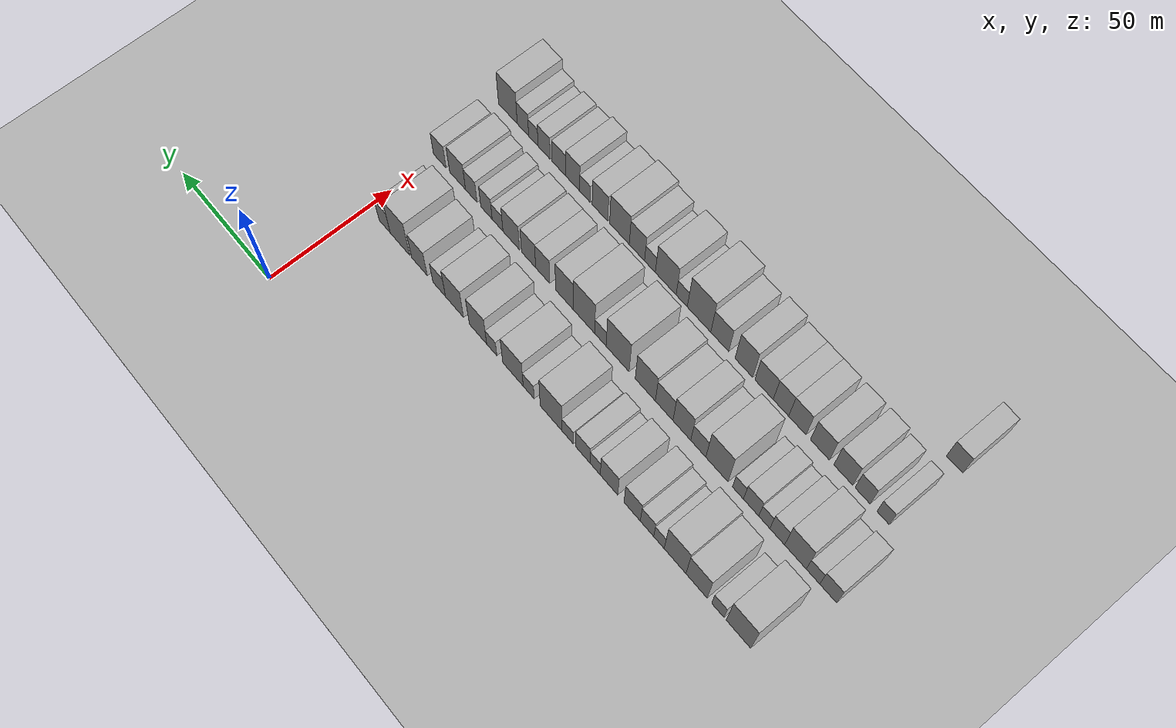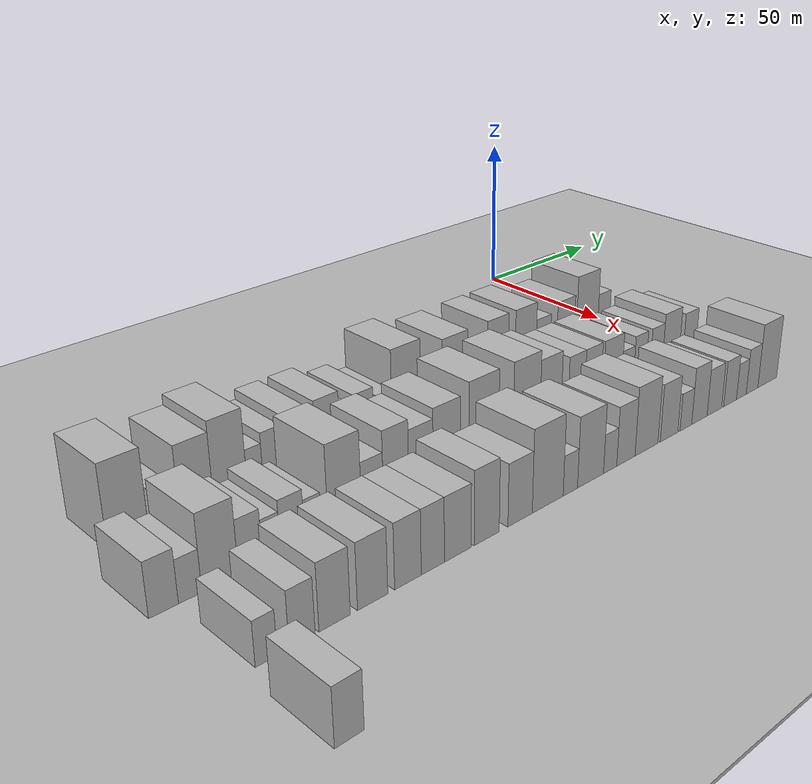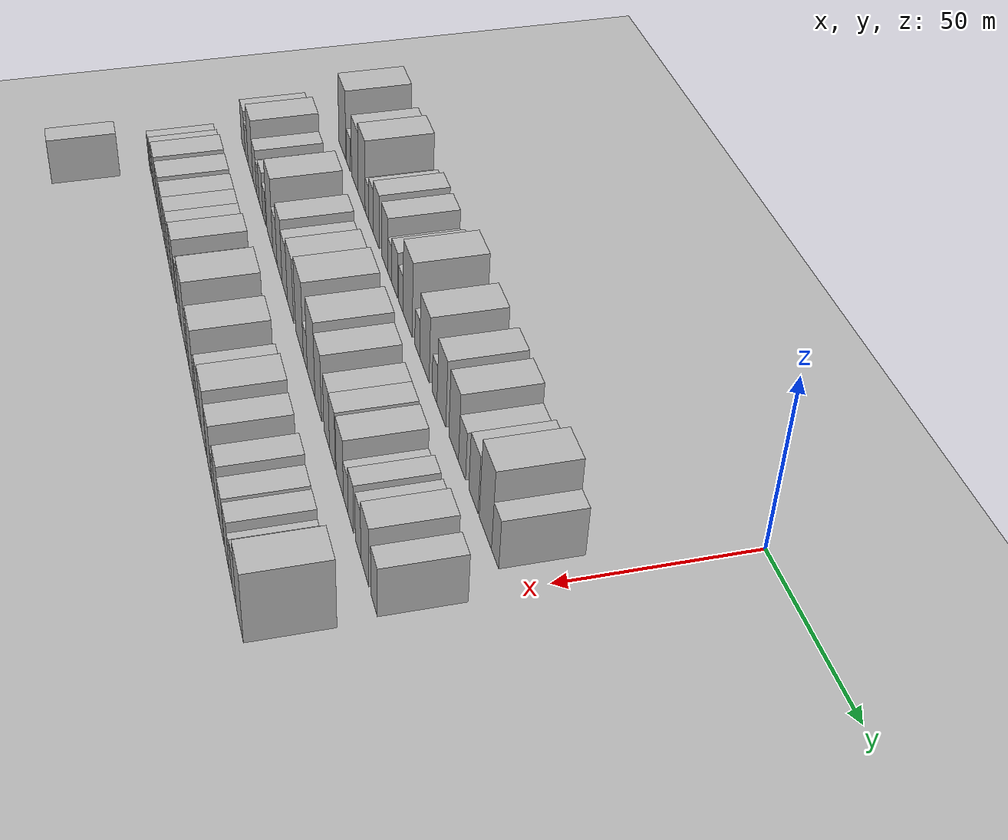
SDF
<sdf version="1.6">
 <world name="default">
  <include><name>ground_plane_1</name><uri>model://HANNAS_ground_plane</uri></include>
  <include>
   <name>ground_plane_2</name>
   <uri>model://HANNAS_ground_plane</uri>
   <pose>100 0 0  0 0 0</pose>
  </include>
  <model name="building_38">
   <static>1</static>
   <pose>50.0000 -184.0242 0 0.000000 0.000000 0.000000</pose>
   <link name="link">
    <pose>0 0 12.00 0 0 0</pose>
    <collision name="collision"><geometry><box><size>20.0000 10.9227 24.0000</size></box></geometry></collision>
    <visual name="visual">
     <cast_shadows>0</cast_shadows>
     <geometry><box><size>20.0000 10.9227 24.0000</size></box></geometry>
     <material>
      <script>
       <uri>model://HANNAS_wall/materials/scripts</uri>
       <uri>model://HANNAS_wall/materials/textures</uri>
       <name>vrc/HANNAS_wall</name>
      </script>
     </material>
    </visual>
   </link>
  </model>
  <model name="building_39">
   <static>1</static>
   <pose>50.0000 -174.7651 0 0.000000 0.000000 0.000000</pose>
   <link name="link">
    <pose>0 0 6.00 0 0 0</pose>
    <collision name="collision"><geometry><box><size>20.0000 5.5954 12.0000</size></box></geometry></collision>
    <visual name="visual">
     <cast_shadows>0</cast_shadows>
     <geometry><box><size>20.0000 5.5954 12.0000</size></box></geometry>
     <material>
      <script>
       <uri>model://HANNAS_wall/materials/scripts</uri>
       <uri>model://HANNAS_wall/materials/textures</uri>
       <name>vrc/HANNAS_wall</name>
      </script>
     </material>
    </visual>
   </link>
  </model>
  <model name="building_40">
   <static>1</static>
   <pose>50.0000 -165.1208 0 0.000000 0.000000 0.000000</pose>
   <link name="link">
    <pose>0 0 10.50 0 0 0</pose>
    <collision name="collision"><geometry><box><size>20.0000 9.6932 21.0000</size></box></geometry></collision>
    <visual name="visual">
     <cast_shadows>0</cast_shadows>
     <geometry><box><size>20.0000 9.6932 21.0000</size></box></geometry>
     <material>
      <script>
       <uri>model://HANNAS_wall/materials/scripts</uri>
       <uri>model://HANNAS_wall/materials/textures</uri>
       <name>vrc/HANNAS_wall</name>
      </script>
     </material>
    </visual>
   </link>
  </model>
  <model name="building_41">
   <static>1</static>
   <pose>50.0000 -155.2484 0 0.000000 0.000000 0.000000</pose>
   <link name="link">
    <pose>0 0 12.00 0 0 0</pose>
    <collision name="collision"><geometry><box><size>20.0000 10.0516 24.0000</size></box></geometry></collision>
    <visual name="visual">
     <cast_shadows>0</cast_shadows>
     <geometry><box><size>20.0000 10.0516 24.0000</size></box></geometry>
     <material>
      <script>
       <uri>model://HANNAS_wall/materials/scripts</uri>
       <uri>model://HANNAS_wall/materials/textures</uri>
       <name>vrc/HANNAS_wall</name>
      </script>
     </material>
    </visual>
   </link>
  </model>
  <model name="building_42">
   <static>1</static>
   <pose>50.0000 -147.7631 0 0.000000 0.000000 0.000000</pose>
   <link name="link">
    <pose>0 0 6.00 0 0 0</pose>
    <collision name="collision"><geometry><box><size>20.0000 4.9192 12.0000</size></box></geometry></collision>
    <visual name="visual">
     <cast_shadows>0</cast_shadows>
     <geometry><box><size>20.0000 4.9192 12.0000</size></box></geometry>
     <material>
      <script>
       <uri>model://HANNAS_wall/materials/scripts</uri>
       <uri>model://HANNAS_wall/materials/textures</uri>
       <name>vrc/HANNAS_wall</name>
      </script>
     </material>
    </visual>
   </link>
  </model>
  <model name="building_43">
   <static>1</static>
   <pose>50.0000 -142.1714 0 0.000000 0.000000 0.000000</pose>
   <link name="link">
    <pose>0 0 7.50 0 0 0</pose>
    <collision name="collision"><geometry><box><size>20.0000 6.2641 15.0000</size></box></geometry></collision>
    <visual name="visual">
     <cast_shadows>0</cast_shadows>
     <geometry><box><size>20.0000 6.2641 15.0000</size></box></geometry>
     <material>
      <script>
       <uri>model://HANNAS_wall/materials/scripts</uri>
       <uri>model://HANNAS_wall/materials/textures</uri>
       <name>vrc/HANNAS_wall</name>
      </script>
     </material>
    </visual>
   </link>
  </model>
  <model name="building_44">
   <static>1</static>
   <pose>50.0000 -135.1773 0 0.000000 0.000000 0.000000</pose>
   <link name="link">
    <pose>0 0 9.00 0 0 0</pose>
    <collision name="collision"><geometry><box><size>20.0000 7.7241 18.0000</size></box></geometry></collision>
    <visual name="visual">
     <cast_shadows>0</cast_shadows>
     <geometry><box><size>20.0000 7.7241 18.0000</size></box></geometry>
     <material>
      <script>
       <uri>model://HANNAS_wall/materials/scripts</uri>
       <uri>model://HANNAS_wall/materials/textures</uri>
       <name>vrc/HANNAS_wall</name>
      </script>
     </material>
    </visual>
   </link>
  </model>
  <model name="building_45">
   <static>1</static>
   <pose>50.0000 -124.1490 0 0.000000 0.000000 0.000000</pose>
   <link name="link">
    <pose>0 0 9.00 0 0 0</pose>
    <collision name="collision"><geometry><box><size>20.0000 8.3326 18.0000</size></box></geometry></collision>
    <visual name="visual">
     <cast_shadows>0</cast_shadows>
     <geometry><box><size>20.0000 8.3326 18.0000</size></box></geometry>
     <material>
      <script>
       <uri>model://HANNAS_wall/materials/scripts</uri>
       <uri>model://HANNAS_wall/materials/textures</uri>
       <name>vrc/HANNAS_wall</name>
      </script>
     </material>
    </visual>
   </link>
  </model>
  <model name="building_46">
   <static>1</static>
   <pose>50.0000 -117.4950 0 0.000000 0.000000 0.000000</pose>
   <link name="link">
    <pose>0 0 6.00 0 0 0</pose>
    <collision name="collision"><geometry><box><size>20.0000 4.9755 12.0000</size></box></geometry></collision>
    <visual name="visual">
     <cast_shadows>0</cast_shadows>
     <geometry><box><size>20.0000 4.9755 12.0000</size></box></geometry>
     <material>
      <script>
       <uri>model://HANNAS_wall/materials/scripts</uri>
       <uri>model://HANNAS_wall/materials/textures</uri>
       <name>vrc/HANNAS_wall</name>
      </script>
     </material>
    </visual>
   </link>
  </model>
  <model name="building_47">
   <static>1</static>
   <pose>50.0000 -111.4804 0 0.000000 0.000000 0.000000</pose>
   <link name="link">
    <pose>0 0 7.50 0 0 0</pose>
    <collision name="collision"><geometry><box><size>20.0000 7.0537 15.0000</size></box></geometry></collision>
    <visual name="visual">
     <cast_shadows>0</cast_shadows>
     <geometry><box><size>20.0000 7.0537 15.0000</size></box></geometry>
     <material>
      <script>
       <uri>model://HANNAS_wall/materials/scripts</uri>
       <uri>model://HANNAS_wall/materials/textures</uri>
       <name>vrc/HANNAS_wall</name>
      </script>
     </material>
    </visual>
   </link>
  </model>
  <model name="building_48">
   <static>1</static>
   <pose>50.0000 -104.1491 0 0.000000 0.000000 0.000000</pose>
   <link name="link">
    <pose>0 0 6.00 0 0 0</pose>
    <collision name="collision"><geometry><box><size>20.0000 5.6088 12.0000</size></box></geometry></collision>
    <visual name="visual">
     <cast_shadows>0</cast_shadows>
     <geometry><box><size>20.0000 5.6088 12.0000</size></box></geometry>
     <material>
      <script>
       <uri>model://HANNAS_wall/materials/scripts</uri>
       <uri>model://HANNAS_wall/materials/textures</uri>
       <name>vrc/HANNAS_wall</name>
      </script>
     </material>
    </visual>
   </link>
  </model>
  <model name="building_49">
   <static>1</static>
   <pose>50.0000 -95.9349 0 0.000000 0.000000 0.000000</pose>
   <link name="link">
    <pose>0 0 12.00 0 0 0</pose>
    <collision name="collision"><geometry><box><size>20.0000 10.8196 24.0000</size></box></geometry></collision>
    <visual name="visual">
     <cast_shadows>0</cast_shadows>
     <geometry><box><size>20.0000 10.8196 24.0000</size></box></geometry>
     <material>
      <script>
       <uri>model://HANNAS_wall/materials/scripts</uri>
       <uri>model://HANNAS_wall/materials/textures</uri>
       <name>vrc/HANNAS_wall</name>
      </script>
     </material>
    </visual>
   </link>
  </model>
  <model name="building_50">
   <static>1</static>
   <pose>50.0000 -84.7681 0 0.000000 0.000000 0.000000</pose>
   <link name="link">
    <pose>0 0 6.00 0 0 0</pose>
    <collision name="collision"><geometry><box><size>20.0000 5.5140 12.0000</size></box></geometry></collision>
    <visual name="visual">
     <cast_shadows>0</cast_shadows>
     <geometry><box><size>20.0000 5.5140 12.0000</size></box></geometry>
     <material>
      <script>
       <uri>model://HANNAS_wall/materials/scripts</uri>
       <uri>model://HANNAS_wall/materials/textures</uri>
       <name>vrc/HANNAS_wall</name>
      </script>
     </material>
    </visual>
   </link>
  </model>
  <model name="building_51">
   <static>1</static>
   <pose>50.0000 -76.8335 0 0.000000 0.000000 0.000000</pose>
   <link name="link">
    <pose>0 0 10.50 0 0 0</pose>
    <collision name="collision"><geometry><box><size>20.0000 10.3552 21.0000</size></box></geometry></collision>
    <visual name="visual">
     <cast_shadows>0</cast_shadows>
     <geometry><box><size>20.0000 10.3552 21.0000</size></box></geometry>
     <material>
      <script>
       <uri>model://HANNAS_wall/materials/scripts</uri>
       <uri>model://HANNAS_wall/materials/textures</uri>
       <name>vrc/HANNAS_wall</name>
      </script>
     </material>
    </visual>
   </link>
  </model>
  <model name="building_52">
   <static>1</static>
   <pose>50.0000 -66.0445 0 0.000000 0.000000 0.000000</pose>
   <link name="link">
    <pose>0 0 6.00 0 0 0</pose>
    <collision name="collision"><geometry><box><size>20.0000 5.2229 12.0000</size></box></geometry></collision>
    <visual name="visual">
     <cast_shadows>0</cast_shadows>
     <geometry><box><size>20.0000 5.2229 12.0000</size></box></geometry>
     <material>
      <script>
       <uri>model://HANNAS_wall/materials/scripts</uri>
       <uri>model://HANNAS_wall/materials/textures</uri>
       <name>vrc/HANNAS_wall</name>
      </script>
     </material>
    </visual>
   </link>
  </model>
  <model name="building_53">
   <static>1</static>
   <pose>50.0000 -58.9326 0 0.000000 0.000000 0.000000</pose>
   <link name="link">
    <pose>0 0 10.50 0 0 0</pose>
    <collision name="collision"><geometry><box><size>20.0000 9.0008 21.0000</size></box></geometry></collision>
    <visual name="visual">
     <cast_shadows>0</cast_shadows>
     <geometry><box><size>20.0000 9.0008 21.0000</size></box></geometry>
     <material>
      <script>
       <uri>model://HANNAS_wall/materials/scripts</uri>
       <uri>model://HANNAS_wall/materials/textures</uri>
       <name>vrc/HANNAS_wall</name>
      </script>
     </material>
    </visual>
   </link>
  </model>
  <model name="building_54">
   <static>1</static>
   <pose>50.0000 -46.7122 0 0.000000 0.000000 0.000000</pose>
   <link name="link">
    <pose>0 0 10.50 0 0 0</pose>
    <collision name="collision"><geometry><box><size>20.0000 9.4400 21.0000</size></box></geometry></collision>
    <visual name="visual">
     <cast_shadows>0</cast_shadows>
     <geometry><box><size>20.0000 9.4400 21.0000</size></box></geometry>
     <material>
      <script>
       <uri>model://HANNAS_wall/materials/scripts</uri>
       <uri>model://HANNAS_wall/materials/textures</uri>
       <name>vrc/HANNAS_wall</name>
      </script>
     </material>
    </visual>
   </link>
  </model>
  <model name="building_55">
   <static>1</static>
   <pose>50.0000 -38.6631 0 0.000000 0.000000 0.000000</pose>
   <link name="link">
    <pose>0 0 7.50 0 0 0</pose>
    <collision name="collision"><geometry><box><size>20.0000 6.6581 15.0000</size></box></geometry></collision>
    <visual name="visual">
     <cast_shadows>0</cast_shadows>
     <geometry><box><size>20.0000 6.6581 15.0000</size></box></geometry>
     <material>
      <script>
       <uri>model://HANNAS_wall/materials/scripts</uri>
       <uri>model://HANNAS_wall/materials/textures</uri>
       <name>vrc/HANNAS_wall</name>
      </script>
     </material>
    </visual>
   </link>
  </model>
  <model name="building_56">
   <static>1</static>
   <pose>50.0000 -28.1345 0 0.000000 0.000000 0.000000</pose>
   <link name="link">
    <pose>0 0 9.00 0 0 0</pose>
    <collision name="collision"><geometry><box><size>20.0000 8.3990 18.0000</size></box></geometry></collision>
    <visual name="visual">
     <cast_shadows>0</cast_shadows>
     <geometry><box><size>20.0000 8.3990 18.0000</size></box></geometry>
     <material>
      <script>
       <uri>model://HANNAS_wall/materials/scripts</uri>
       <uri>model://HANNAS_wall/materials/textures</uri>
       <name>vrc/HANNAS_wall</name>
      </script>
     </material>
    </visual>
   </link>
  </model>
  <model name="building_57">
   <static>1</static>
   <pose>50.0000 -17.6070 0 0.000000 0.000000 0.000000</pose>
   <link name="link">
    <pose>0 0 12.00 0 0 0</pose>
    <collision name="collision"><geometry><box><size>20.0000 10.6561 24.0000</size></box></geometry></collision>
    <visual name="visual">
     <cast_shadows>0</cast_shadows>
     <geometry><box><size>20.0000 10.6561 24.0000</size></box></geometry>
     <material>
      <script>
       <uri>model://HANNAS_wall/materials/scripts</uri>
       <uri>model://HANNAS_wall/materials/textures</uri>
       <name>vrc/HANNAS_wall</name>
      </script>
     </material>
    </visual>
   </link>
  </model>
  <model name="building_58">
   <static>1</static>
   <pose>50.0000 -9.2561 0 0.000000 0.000000 0.000000</pose>
   <link name="link">
    <pose>0 0 7.50 0 0 0</pose>
    <collision name="collision"><geometry><box><size>20.0000 6.0458 15.0000</size></box></geometry></collision>
    <visual name="visual">
     <cast_shadows>0</cast_shadows>
     <geometry><box><size>20.0000 6.0458 15.0000</size></box></geometry>
     <material>
      <script>
       <uri>model://HANNAS_wall/materials/scripts</uri>
       <uri>model://HANNAS_wall/materials/textures</uri>
       <name>vrc/HANNAS_wall</name>
      </script>
     </material>
    </visual>
   </link>
  </model>
  <model name="building_153">
   <static>1</static>
   <pose>79.0000 -192.1638 0 0.000000 0.000000 0.000000</pose>
   <link name="link">
    <pose>0 0 7.50 0 0 0</pose>
    <collision name="collision"><geometry><box><size>20.0000 7.4065 15.0000</size></box></geometry></collision>
    <visual name="visual">
     <cast_shadows>0</cast_shadows>
     <geometry><box><size>20.0000 7.4065 15.0000</size></box></geometry>
     <material>
      <script>
       <uri>model://HANNAS_wall/materials/scripts</uri>
       <uri>model://HANNAS_wall/materials/textures</uri>
       <name>vrc/HANNAS_wall</name>
      </script>
     </material>
    </visual>
   </link>
  </model>
  <model name="building_154">
   <static>1</static>
   <pose>79.0000 -185.4684 0 0.000000 0.000000 0.000000</pose>
   <link name="link">
    <pose>0 0 6.00 0 0 0</pose>
    <collision name="collision"><geometry><box><size>20.0000 5.9842 12.0000</size></box></geometry></collision>
    <visual name="visual">
     <cast_shadows>0</cast_shadows>
     <geometry><box><size>20.0000 5.9842 12.0000</size></box></geometry>
     <material>
      <script>
       <uri>model://HANNAS_wall/materials/scripts</uri>
       <uri>model://HANNAS_wall/materials/textures</uri>
       <name>vrc/HANNAS_wall</name>
      </script>
     </material>
    </visual>
   </link>
  </model>
  <model name="building_155">
   <static>1</static>
   <pose>79.0000 -177.6312 0 0.000000 0.000000 0.000000</pose>
   <link name="link">
    <pose>0 0 10.50 0 0 0</pose>
    <collision name="collision"><geometry><box><size>20.0000 9.6901 21.0000</size></box></geometry></collision>
    <visual name="visual">
     <cast_shadows>0</cast_shadows>
     <geometry><box><size>20.0000 9.6901 21.0000</size></box></geometry>
     <material>
      <script>
       <uri>model://HANNAS_wall/materials/scripts</uri>
       <uri>model://HANNAS_wall/materials/textures</uri>
       <name>vrc/HANNAS_wall</name>
      </script>
     </material>
    </visual>
   </link>
  </model>
  <model name="building_156">
   <static>1</static>
   <pose>79.0000 -169.4577 0 0.000000 0.000000 0.000000</pose>
   <link name="link">
    <pose>0 0 7.50 0 0 0</pose>
    <collision name="collision"><geometry><box><size>20.0000 6.6568 15.0000</size></box></geometry></collision>
    <visual name="visual">
     <cast_shadows>0</cast_shadows>
     <geometry><box><size>20.0000 6.6568 15.0000</size></box></geometry>
     <material>
      <script>
       <uri>model://HANNAS_wall/materials/scripts</uri>
       <uri>model://HANNAS_wall/materials/textures</uri>
       <name>vrc/HANNAS_wall</name>
      </script>
     </material>
    </visual>
   </link>
  </model>
  <model name="building_157">
   <static>1</static>
   <pose>79.0000 -163.5980 0 0.000000 0.000000 0.000000</pose>
   <link name="link">
    <pose>0 0 6.00 0 0 0</pose>
    <collision name="collision"><geometry><box><size>20.0000 5.0628 12.0000</size></box></geometry></collision>
    <visual name="visual">
     <cast_shadows>0</cast_shadows>
     <geometry><box><size>20.0000 5.0628 12.0000</size></box></geometry>
     <material>
      <script>
       <uri>model://HANNAS_wall/materials/scripts</uri>
       <uri>model://HANNAS_wall/materials/textures</uri>
       <name>vrc/HANNAS_wall</name>
      </script>
     </material>
    </visual>
   </link>
  </model>
  <model name="building_158">
   <static>1</static>
   <pose>79.0000 -157.5581 0 0.000000 0.000000 0.000000</pose>
   <link name="link">
    <pose>0 0 7.50 0 0 0</pose>
    <collision name="collision"><geometry><box><size>20.0000 7.0170 15.0000</size></box></geometry></collision>
    <visual name="visual">
     <cast_shadows>0</cast_shadows>
     <geometry><box><size>20.0000 7.0170 15.0000</size></box></geometry>
     <material>
      <script>
       <uri>model://HANNAS_wall/materials/scripts</uri>
       <uri>model://HANNAS_wall/materials/textures</uri>
       <name>vrc/HANNAS_wall</name>
      </script>
     </material>
    </visual>
   </link>
  </model>
  <model name="building_159">
   <static>1</static>
   <pose>79.0000 -151.5121 0 0.000000 0.000000 0.000000</pose>
   <link name="link">
    <pose>0 0 6.00 0 0 0</pose>
    <collision name="collision"><geometry><box><size>20.0000 5.0750 12.0000</size></box></geometry></collision>
    <visual name="visual">
     <cast_shadows>0</cast_shadows>
     <geometry><box><size>20.0000 5.0750 12.0000</size></box></geometry>
     <material>
      <script>
       <uri>model://HANNAS_wall/materials/scripts</uri>
       <uri>model://HANNAS_wall/materials/textures</uri>
       <name>vrc/HANNAS_wall</name>
      </script>
     </material>
    </visual>
   </link>
  </model>
  <model name="building_160">
   <static>1</static>
   <pose>79.0000 -141.7733 0 0.000000 0.000000 0.000000</pose>
   <link name="link">
    <pose>0 0 12.00 0 0 0</pose>
    <collision name="collision"><geometry><box><size>20.0000 10.4025 24.0000</size></box></geometry></collision>
    <visual name="visual">
     <cast_shadows>0</cast_shadows>
     <geometry><box><size>20.0000 10.4025 24.0000</size></box></geometry>
     <material>
      <script>
       <uri>model://HANNAS_wall/materials/scripts</uri>
       <uri>model://HANNAS_wall/materials/textures</uri>
       <name>vrc/HANNAS_wall</name>
      </script>
     </material>
    </visual>
   </link>
  </model>
  <model name="building_161">
   <static>1</static>
   <pose>79.0000 -133.0103 0 0.000000 0.000000 0.000000</pose>
   <link name="link">
    <pose>0 0 7.50 0 0 0</pose>
    <collision name="collision"><geometry><box><size>20.0000 7.1236 15.0000</size></box></geometry></collision>
    <visual name="visual">
     <cast_shadows>0</cast_shadows>
     <geometry><box><size>20.0000 7.1236 15.0000</size></box></geometry>
     <material>
      <script>
       <uri>model://HANNAS_wall/materials/scripts</uri>
       <uri>model://HANNAS_wall/materials/textures</uri>
       <name>vrc/HANNAS_wall</name>
      </script>
     </material>
    </visual>
   </link>
  </model>
  <model name="building_162">
   <static>1</static>
   <pose>79.0000 -125.2023 0 0.000000 0.000000 0.000000</pose>
   <link name="link">
    <pose>0 0 10.50 0 0 0</pose>
    <collision name="collision"><geometry><box><size>20.0000 8.4924 21.0000</size></box></geometry></collision>
    <visual name="visual">
     <cast_shadows>0</cast_shadows>
     <geometry><box><size>20.0000 8.4924 21.0000</size></box></geometry>
     <material>
      <script>
       <uri>model://HANNAS_wall/materials/scripts</uri>
       <uri>model://HANNAS_wall/materials/textures</uri>
       <name>vrc/HANNAS_wall</name>
      </script>
     </material>
    </visual>
   </link>
  </model>
  <model name="building_163">
   <static>1</static>
   <pose>79.0000 -116.7203 0 0.000000 0.000000 0.000000</pose>
   <link name="link">
    <pose>0 0 9.00 0 0 0</pose>
    <collision name="collision"><geometry><box><size>20.0000 8.4717 18.0000</size></box></geometry></collision>
    <visual name="visual">
     <cast_shadows>0</cast_shadows>
     <geometry><box><size>20.0000 8.4717 18.0000</size></box></geometry>
     <material>
      <script>
       <uri>model://HANNAS_wall/materials/scripts</uri>
       <uri>model://HANNAS_wall/materials/textures</uri>
       <name>vrc/HANNAS_wall</name>
      </script>
     </material>
    </visual>
   </link>
  </model>
  <model name="building_164">
   <static>1</static>
   <pose>79.0000 -107.5965 0 0.000000 0.000000 0.000000</pose>
   <link name="link">
    <pose>0 0 10.50 0 0 0</pose>
    <collision name="collision"><geometry><box><size>20.0000 9.7758 21.0000</size></box></geometry></collision>
    <visual name="visual">
     <cast_shadows>0</cast_shadows>
     <geometry><box><size>20.0000 9.7758 21.0000</size></box></geometry>
     <material>
      <script>
       <uri>model://HANNAS_wall/materials/scripts</uri>
       <uri>model://HANNAS_wall/materials/textures</uri>
       <name>vrc/HANNAS_wall</name>
      </script>
     </material>
    </visual>
   </link>
  </model>
  <model name="building_165">
   <static>1</static>
   <pose>79.0000 -94.0342 0 0.000000 0.000000 0.000000</pose>
   <link name="link">
    <pose>0 0 12.00 0 0 0</pose>
    <collision name="collision"><geometry><box><size>20.0000 11.3489 24.0000</size></box></geometry></collision>
    <visual name="visual">
     <cast_shadows>0</cast_shadows>
     <geometry><box><size>20.0000 11.3489 24.0000</size></box></geometry>
     <material>
      <script>
       <uri>model://HANNAS_wall/materials/scripts</uri>
       <uri>model://HANNAS_wall/materials/textures</uri>
       <name>vrc/HANNAS_wall</name>
      </script>
     </material>
    </visual>
   </link>
  </model>
  <model name="building_166">
   <static>1</static>
   <pose>79.0000 -85.4858 0 0.000000 0.000000 0.000000</pose>
   <link name="link">
    <pose>0 0 6.00 0 0 0</pose>
    <collision name="collision"><geometry><box><size>20.0000 5.7478 12.0000</size></box></geometry></collision>
    <visual name="visual">
     <cast_shadows>0</cast_shadows>
     <geometry><box><size>20.0000 5.7478 12.0000</size></box></geometry>
     <material>
      <script>
       <uri>model://HANNAS_wall/materials/scripts</uri>
       <uri>model://HANNAS_wall/materials/textures</uri>
       <name>vrc/HANNAS_wall</name>
      </script>
     </material>
    </visual>
   </link>
  </model>
  <model name="building_167">
   <static>1</static>
   <pose>79.0000 -77.2074 0 0.000000 0.000000 0.000000</pose>
   <link name="link">
    <pose>0 0 12.00 0 0 0</pose>
    <collision name="collision"><geometry><box><size>20.0000 10.8091 24.0000</size></box></geometry></collision>
    <visual name="visual">
     <cast_shadows>0</cast_shadows>
     <geometry><box><size>20.0000 10.8091 24.0000</size></box></geometry>
     <material>
      <script>
       <uri>model://HANNAS_wall/materials/scripts</uri>
       <uri>model://HANNAS_wall/materials/textures</uri>
       <name>vrc/HANNAS_wall</name>
      </script>
     </material>
    </visual>
   </link>
  </model>
  <model name="building_168">
   <static>1</static>
   <pose>79.0000 -67.3506 0 0.000000 0.000000 0.000000</pose>
   <link name="link">
    <pose>0 0 10.50 0 0 0</pose>
    <collision name="collision"><geometry><box><size>20.0000 8.9043 21.0000</size></box></geometry></collision>
    <visual name="visual">
     <cast_shadows>0</cast_shadows>
     <geometry><box><size>20.0000 8.9043 21.0000</size></box></geometry>
     <material>
      <script>
       <uri>model://HANNAS_wall/materials/scripts</uri>
       <uri>model://HANNAS_wall/materials/textures</uri>
       <name>vrc/HANNAS_wall</name>
      </script>
     </material>
    </visual>
   </link>
  </model>
  <model name="building_169">
   <static>1</static>
   <pose>79.0000 -56.2754 0 0.000000 0.000000 0.000000</pose>
   <link name="link">
    <pose>0 0 9.00 0 0 0</pose>
    <collision name="collision"><geometry><box><size>20.0000 7.2462 18.0000</size></box></geometry></collision>
    <visual name="visual">
     <cast_shadows>0</cast_shadows>
     <geometry><box><size>20.0000 7.2462 18.0000</size></box></geometry>
     <material>
      <script>
       <uri>model://HANNAS_wall/materials/scripts</uri>
       <uri>model://HANNAS_wall/materials/textures</uri>
       <name>vrc/HANNAS_wall</name>
      </script>
     </material>
    </visual>
   </link>
  </model>
  <model name="building_170">
   <static>1</static>
   <pose>79.0000 -48.9770 0 0.000000 0.000000 0.000000</pose>
   <link name="link">
    <pose>0 0 9.00 0 0 0</pose>
    <collision name="collision"><geometry><box><size>20.0000 7.3505 18.0000</size></box></geometry></collision>
    <visual name="visual">
     <cast_shadows>0</cast_shadows>
     <geometry><box><size>20.0000 7.3505 18.0000</size></box></geometry>
     <material>
      <script>
       <uri>model://HANNAS_wall/materials/scripts</uri>
       <uri>model://HANNAS_wall/materials/textures</uri>
       <name>vrc/HANNAS_wall</name>
      </script>
     </material>
    </visual>
   </link>
  </model>
  <model name="building_171">
   <static>1</static>
   <pose>79.0000 -39.9403 0 0.000000 0.000000 0.000000</pose>
   <link name="link">
    <pose>0 0 9.00 0 0 0</pose>
    <collision name="collision"><geometry><box><size>20.0000 8.7228 18.0000</size></box></geometry></collision>
    <visual name="visual">
     <cast_shadows>0</cast_shadows>
     <geometry><box><size>20.0000 8.7228 18.0000</size></box></geometry>
     <material>
      <script>
       <uri>model://HANNAS_wall/materials/scripts</uri>
       <uri>model://HANNAS_wall/materials/textures</uri>
       <name>vrc/HANNAS_wall</name>
      </script>
     </material>
    </visual>
   </link>
  </model>
  <model name="building_172">
   <static>1</static>
   <pose>79.0000 -32.7329 0 0.000000 0.000000 0.000000</pose>
   <link name="link">
    <pose>0 0 6.00 0 0 0</pose>
    <collision name="collision"><geometry><box><size>20.0000 5.6920 12.0000</size></box></geometry></collision>
    <visual name="visual">
     <cast_shadows>0</cast_shadows>
     <geometry><box><size>20.0000 5.6920 12.0000</size></box></geometry>
     <material>
      <script>
       <uri>model://HANNAS_wall/materials/scripts</uri>
       <uri>model://HANNAS_wall/materials/textures</uri>
       <name>vrc/HANNAS_wall</name>
      </script>
     </material>
    </visual>
   </link>
  </model>
  <model name="building_173">
   <static>1</static>
   <pose>79.0000 -26.8521 0 0.000000 0.000000 0.000000</pose>
   <link name="link">
    <pose>0 0 7.50 0 0 0</pose>
    <collision name="collision"><geometry><box><size>20.0000 6.0697 15.0000</size></box></geometry></collision>
    <visual name="visual">
     <cast_shadows>0</cast_shadows>
     <geometry><box><size>20.0000 6.0697 15.0000</size></box></geometry>
     <material>
      <script>
       <uri>model://HANNAS_wall/materials/scripts</uri>
       <uri>model://HANNAS_wall/materials/textures</uri>
       <name>vrc/HANNAS_wall</name>
      </script>
     </material>
    </visual>
   </link>
  </model>
  <model name="building_174">
   <static>1</static>
   <pose>79.0000 -18.7270 0 0.000000 0.000000 0.000000</pose>
   <link name="link">
    <pose>0 0 7.50 0 0 0</pose>
    <collision name="collision"><geometry><box><size>20.0000 6.1805 15.0000</size></box></geometry></collision>
    <visual name="visual">
     <cast_shadows>0</cast_shadows>
     <geometry><box><size>20.0000 6.1805 15.0000</size></box></geometry>
     <material>
      <script>
       <uri>model://HANNAS_wall/materials/scripts</uri>
       <uri>model://HANNAS_wall/materials/textures</uri>
       <name>vrc/HANNAS_wall</name>
      </script>
     </material>
    </visual>
   </link>
  </model>
  <model name="building_175">
   <static>1</static>
   <pose>79.0000 -11.3452 0 0.000000 0.000000 0.000000</pose>
   <link name="link">
    <pose>0 0 9.00 0 0 0</pose>
    <collision name="collision"><geometry><box><size>20.0000 8.5832 18.0000</size></box></geometry></collision>
    <visual name="visual">
     <cast_shadows>0</cast_shadows>
     <geometry><box><size>20.0000 8.5832 18.0000</size></box></geometry>
     <material>
      <script>
       <uri>model://HANNAS_wall/materials/scripts</uri>
       <uri>model://HANNAS_wall/materials/textures</uri>
       <name>vrc/HANNAS_wall</name>
      </script>
     </material>
    </visual>
   </link>
  </model>
  <model name="building_176">
   <static>1</static>
   <pose>79.0000 -1.6232 0 0.000000 0.000000 0.000000</pose>
   <link name="link">
    <pose>0 0 7.50 0 0 0</pose>
    <collision name="collision"><geometry><box><size>20.0000 6.8607 15.0000</size></box></geometry></collision>
    <visual name="visual">
     <cast_shadows>0</cast_shadows>
     <geometry><box><size>20.0000 6.8607 15.0000</size></box></geometry>
     <material>
      <script>
       <uri>model://HANNAS_wall/materials/scripts</uri>
       <uri>model://HANNAS_wall/materials/textures</uri>
       <name>vrc/HANNAS_wall</name>
      </script>
     </material>
    </visual>
   </link>
  </model>
  <model name="building_267">
   <static>1</static>
   <pose>108.0000 -185.8639 0 0.000000 0.000000 0.000000</pose>
   <link name="link">
    <pose>0 0 6.00 0 0 0</pose>
    <collision name="collision"><geometry><box><size>20.0000 5.4788 12.0000</size></box></geometry></collision>
    <visual name="visual">
     <cast_shadows>0</cast_shadows>
     <geometry><box><size>20.0000 5.4788 12.0000</size></box></geometry>
     <material>
      <script>
       <uri>model://HANNAS_wall/materials/scripts</uri>
       <uri>model://HANNAS_wall/materials/textures</uri>
       <name>vrc/HANNAS_wall</name>
      </script>
     </material>
    </visual>
   </link>
  </model>
  <model name="building_268">
   <static>1</static>
   <pose>108.0000 -176.7318 0 0.000000 0.000000 0.000000</pose>
   <link name="link">
    <pose>0 0 7.50 0 0 0</pose>
    <collision name="collision"><geometry><box><size>20.0000 6.7854 15.0000</size></box></geometry></collision>
    <visual name="visual">
     <cast_shadows>0</cast_shadows>
     <geometry><box><size>20.0000 6.7854 15.0000</size></box></geometry>
     <material>
      <script>
       <uri>model://HANNAS_wall/materials/scripts</uri>
       <uri>model://HANNAS_wall/materials/textures</uri>
       <name>vrc/HANNAS_wall</name>
      </script>
     </material>
    </visual>
   </link>
  </model>
  <model name="building_269">
   <static>1</static>
   <pose>108.0000 -168.0785 0 0.000000 0.000000 0.000000</pose>
   <link name="link">
    <pose>0 0 9.00 0 0 0</pose>
    <collision name="collision"><geometry><box><size>20.0000 8.5213 18.0000</size></box></geometry></collision>
    <visual name="visual">
     <cast_shadows>0</cast_shadows>
     <geometry><box><size>20.0000 8.5213 18.0000</size></box></geometry>
     <material>
      <script>
       <uri>model://HANNAS_wall/materials/scripts</uri>
       <uri>model://HANNAS_wall/materials/textures</uri>
       <name>vrc/HANNAS_wall</name>
      </script>
     </material>
    </visual>
   </link>
  </model>
  <model name="building_270">
   <static>1</static>
   <pose>108.0000 -157.4808 0 0.000000 0.000000 0.000000</pose>
   <link name="link">
    <pose>0 0 9.00 0 0 0</pose>
    <collision name="collision"><geometry><box><size>20.0000 8.6741 18.0000</size></box></geometry></collision>
    <visual name="visual">
     <cast_shadows>0</cast_shadows>
     <geometry><box><size>20.0000 8.6741 18.0000</size></box></geometry>
     <material>
      <script>
       <uri>model://HANNAS_wall/materials/scripts</uri>
       <uri>model://HANNAS_wall/materials/textures</uri>
       <name>vrc/HANNAS_wall</name>
      </script>
     </material>
    </visual>
   </link>
  </model>
  <model name="building_271">
   <static>1</static>
   <pose>108.0000 -147.1413 0 0.000000 0.000000 0.000000</pose>
   <link name="link">
    <pose>0 0 9.00 0 0 0</pose>
    <collision name="collision"><geometry><box><size>20.0000 8.0049 18.0000</size></box></geometry></collision>
    <visual name="visual">
     <cast_shadows>0</cast_shadows>
     <geometry><box><size>20.0000 8.0049 18.0000</size></box></geometry>
     <material>
      <script>
       <uri>model://HANNAS_wall/materials/scripts</uri>
       <uri>model://HANNAS_wall/materials/textures</uri>
       <name>vrc/HANNAS_wall</name>
      </script>
     </material>
    </visual>
   </link>
  </model>
  <model name="building_272">
   <static>1</static>
   <pose>108.0000 -139.5292 0 0.000000 0.000000 0.000000</pose>
   <link name="link">
    <pose>0 0 9.00 0 0 0</pose>
    <collision name="collision"><geometry><box><size>20.0000 7.2195 18.0000</size></box></geometry></collision>
    <visual name="visual">
     <cast_shadows>0</cast_shadows>
     <geometry><box><size>20.0000 7.2195 18.0000</size></box></geometry>
     <material>
      <script>
       <uri>model://HANNAS_wall/materials/scripts</uri>
       <uri>model://HANNAS_wall/materials/textures</uri>
       <name>vrc/HANNAS_wall</name>
      </script>
     </material>
    </visual>
   </link>
  </model>
  <model name="building_273">
   <static>1</static>
   <pose>108.0000 -131.5983 0 0.000000 0.000000 0.000000</pose>
   <link name="link">
    <pose>0 0 9.00 0 0 0</pose>
    <collision name="collision"><geometry><box><size>20.0000 8.6423 18.0000</size></box></geometry></collision>
    <visual name="visual">
     <cast_shadows>0</cast_shadows>
     <geometry><box><size>20.0000 8.6423 18.0000</size></box></geometry>
     <material>
      <script>
       <uri>model://HANNAS_wall/materials/scripts</uri>
       <uri>model://HANNAS_wall/materials/textures</uri>
       <name>vrc/HANNAS_wall</name>
      </script>
     </material>
    </visual>
   </link>
  </model>
  <model name="building_274">
   <static>1</static>
   <pose>108.0000 -122.0644 0 0.000000 0.000000 0.000000</pose>
   <link name="link">
    <pose>0 0 10.50 0 0 0</pose>
    <collision name="collision"><geometry><box><size>20.0000 8.4255 21.0000</size></box></geometry></collision>
    <visual name="visual">
     <cast_shadows>0</cast_shadows>
     <geometry><box><size>20.0000 8.4255 21.0000</size></box></geometry>
     <material>
      <script>
       <uri>model://HANNAS_wall/materials/scripts</uri>
       <uri>model://HANNAS_wall/materials/textures</uri>
       <name>vrc/HANNAS_wall</name>
      </script>
     </material>
    </visual>
   </link>
  </model>
  <model name="building_275">
   <static>1</static>
   <pose>108.0000 -110.5147 0 0.000000 0.000000 0.000000</pose>
   <link name="link">
    <pose>0 0 9.00 0 0 0</pose>
    <collision name="collision"><geometry><box><size>20.0000 8.6739 18.0000</size></box></geometry></collision>
    <visual name="visual">
     <cast_shadows>0</cast_shadows>
     <geometry><box><size>20.0000 8.6739 18.0000</size></box></geometry>
     <material>
      <script>
       <uri>model://HANNAS_wall/materials/scripts</uri>
       <uri>model://HANNAS_wall/materials/textures</uri>
       <name>vrc/HANNAS_wall</name>
      </script>
     </material>
    </visual>
   </link>
  </model>
  <model name="building_276">
   <static>1</static>
   <pose>108.0000 -100.4552 0 0.000000 0.000000 0.000000</pose>
   <link name="link">
    <pose>0 0 12.00 0 0 0</pose>
    <collision name="collision"><geometry><box><size>20.0000 11.4451 24.0000</size></box></geometry></collision>
    <visual name="visual">
     <cast_shadows>0</cast_shadows>
     <geometry><box><size>20.0000 11.4451 24.0000</size></box></geometry>
     <material>
      <script>
       <uri>model://HANNAS_wall/materials/scripts</uri>
       <uri>model://HANNAS_wall/materials/textures</uri>
       <name>vrc/HANNAS_wall</name>
      </script>
     </material>
    </visual>
   </link>
  </model>
  <model name="building_277">
   <static>1</static>
   <pose>108.0000 -91.9827 0 0.000000 0.000000 0.000000</pose>
   <link name="link">
    <pose>0 0 6.00 0 0 0</pose>
    <collision name="collision"><geometry><box><size>20.0000 5.5000 12.0000</size></box></geometry></collision>
    <visual name="visual">
     <cast_shadows>0</cast_shadows>
     <geometry><box><size>20.0000 5.5000 12.0000</size></box></geometry>
     <material>
      <script>
       <uri>model://HANNAS_wall/materials/scripts</uri>
       <uri>model://HANNAS_wall/materials/textures</uri>
       <name>vrc/HANNAS_wall</name>
      </script>
     </material>
    </visual>
   </link>
  </model>
  <model name="building_278">
   <static>1</static>
   <pose>108.0000 -84.0711 0 0.000000 0.000000 0.000000</pose>
   <link name="link">
    <pose>0 0 10.50 0 0 0</pose>
    <collision name="collision"><geometry><box><size>20.0000 10.3232 21.0000</size></box></geometry></collision>
    <visual name="visual">
     <cast_shadows>0</cast_shadows>
     <geometry><box><size>20.0000 10.3232 21.0000</size></box></geometry>
     <material>
      <script>
       <uri>model://HANNAS_wall/materials/scripts</uri>
       <uri>model://HANNAS_wall/materials/textures</uri>
       <name>vrc/HANNAS_wall</name>
      </script>
     </material>
    </visual>
   </link>
  </model>
  <model name="building_279">
   <static>1</static>
   <pose>108.0000 -76.1968 0 0.000000 0.000000 0.000000</pose>
   <link name="link">
    <pose>0 0 6.00 0 0 0</pose>
    <collision name="collision"><geometry><box><size>20.0000 5.4254 12.0000</size></box></geometry></collision>
    <visual name="visual">
     <cast_shadows>0</cast_shadows>
     <geometry><box><size>20.0000 5.4254 12.0000</size></box></geometry>
     <material>
      <script>
       <uri>model://HANNAS_wall/materials/scripts</uri>
       <uri>model://HANNAS_wall/materials/textures</uri>
       <name>vrc/HANNAS_wall</name>
      </script>
     </material>
    </visual>
   </link>
  </model>
  <model name="building_280">
   <static>1</static>
   <pose>108.0000 -69.6270 0 0.000000 0.000000 0.000000</pose>
   <link name="link">
    <pose>0 0 9.00 0 0 0</pose>
    <collision name="collision"><geometry><box><size>20.0000 7.7142 18.0000</size></box></geometry></collision>
    <visual name="visual">
     <cast_shadows>0</cast_shadows>
     <geometry><box><size>20.0000 7.7142 18.0000</size></box></geometry>
     <material>
      <script>
       <uri>model://HANNAS_wall/materials/scripts</uri>
       <uri>model://HANNAS_wall/materials/textures</uri>
       <name>vrc/HANNAS_wall</name>
      </script>
     </material>
    </visual>
   </link>
  </model>
  <model name="building_281">
   <static>1</static>
   <pose>108.0000 -60.7673 0 0.000000 0.000000 0.000000</pose>
   <link name="link">
    <pose>0 0 10.50 0 0 0</pose>
    <collision name="collision"><geometry><box><size>20.0000 10.0051 21.0000</size></box></geometry></collision>
    <visual name="visual">
     <cast_shadows>0</cast_shadows>
     <geometry><box><size>20.0000 10.0051 21.0000</size></box></geometry>
     <material>
      <script>
       <uri>model://HANNAS_wall/materials/scripts</uri>
       <uri>model://HANNAS_wall/materials/textures</uri>
       <name>vrc/HANNAS_wall</name>
      </script>
     </material>
    </visual>
   </link>
  </model>
  <model name="building_282">
   <static>1</static>
   <pose>108.0000 -50.7699 0 0.000000 0.000000 0.000000</pose>
   <link name="link">
    <pose>0 0 9.00 0 0 0</pose>
    <collision name="collision"><geometry><box><size>20.0000 7.9898 18.0000</size></box></geometry></collision>
    <visual name="visual">
     <cast_shadows>0</cast_shadows>
     <geometry><box><size>20.0000 7.9898 18.0000</size></box></geometry>
     <material>
      <script>
       <uri>model://HANNAS_wall/materials/scripts</uri>
       <uri>model://HANNAS_wall/materials/textures</uri>
       <name>vrc/HANNAS_wall</name>
      </script>
     </material>
    </visual>
   </link>
  </model>
  <model name="building_283">
   <static>1</static>
   <pose>108.0000 -43.0398 0 0.000000 0.000000 0.000000</pose>
   <link name="link">
    <pose>0 0 6.00 0 0 0</pose>
    <collision name="collision"><geometry><box><size>20.0000 5.4704 12.0000</size></box></geometry></collision>
    <visual name="visual">
     <cast_shadows>0</cast_shadows>
     <geometry><box><size>20.0000 5.4704 12.0000</size></box></geometry>
     <material>
      <script>
       <uri>model://HANNAS_wall/materials/scripts</uri>
       <uri>model://HANNAS_wall/materials/textures</uri>
       <name>vrc/HANNAS_wall</name>
      </script>
     </material>
    </visual>
   </link>
  </model>
  <model name="building_284">
   <static>1</static>
   <pose>108.0000 -36.6270 0 0.000000 0.000000 0.000000</pose>
   <link name="link">
    <pose>0 0 9.00 0 0 0</pose>
    <collision name="collision"><geometry><box><size>20.0000 7.3550 18.0000</size></box></geometry></collision>
    <visual name="visual">
     <cast_shadows>0</cast_shadows>
     <geometry><box><size>20.0000 7.3550 18.0000</size></box></geometry>
     <material>
      <script>
       <uri>model://HANNAS_wall/materials/scripts</uri>
       <uri>model://HANNAS_wall/materials/textures</uri>
       <name>vrc/HANNAS_wall</name>
      </script>
     </material>
    </visual>
   </link>
  </model>
  <model name="building_285">
   <static>1</static>
   <pose>108.0000 -29.3733 0 0.000000 0.000000 0.000000</pose>
   <link name="link">
    <pose>0 0 7.50 0 0 0</pose>
    <collision name="collision"><geometry><box><size>20.0000 7.1524 15.0000</size></box></geometry></collision>
    <visual name="visual">
     <cast_shadows>0</cast_shadows>
     <geometry><box><size>20.0000 7.1524 15.0000</size></box></geometry>
     <material>
      <script>
       <uri>model://HANNAS_wall/materials/scripts</uri>
       <uri>model://HANNAS_wall/materials/textures</uri>
       <name>vrc/HANNAS_wall</name>
      </script>
     </material>
    </visual>
   </link>
  </model>
  <model name="building_286">
   <static>1</static>
   <pose>108.0000 -21.5494 0 0.000000 0.000000 0.000000</pose>
   <link name="link">
    <pose>0 0 7.50 0 0 0</pose>
    <collision name="collision"><geometry><box><size>20.0000 6.4955 15.0000</size></box></geometry></collision>
    <visual name="visual">
     <cast_shadows>0</cast_shadows>
     <geometry><box><size>20.0000 6.4955 15.0000</size></box></geometry>
     <material>
      <script>
       <uri>model://HANNAS_wall/materials/scripts</uri>
       <uri>model://HANNAS_wall/materials/textures</uri>
       <name>vrc/HANNAS_wall</name>
      </script>
     </material>
    </visual>
   </link>
  </model>
  <model name="building_287">
   <static>1</static>
   <pose>108.0000 -15.7955 0 0.000000 0.000000 0.000000</pose>
   <link name="link">
    <pose>0 0 6.00 0 0 0</pose>
    <collision name="collision"><geometry><box><size>20.0000 5.0123 12.0000</size></box></geometry></collision>
    <visual name="visual">
     <cast_shadows>0</cast_shadows>
     <geometry><box><size>20.0000 5.0123 12.0000</size></box></geometry>
     <material>
      <script>
       <uri>model://HANNAS_wall/materials/scripts</uri>
       <uri>model://HANNAS_wall/materials/textures</uri>
       <name>vrc/HANNAS_wall</name>
      </script>
     </material>
    </visual>
   </link>
  </model>
  <model name="building_288">
   <static>1</static>
   <pose>108.0000 -10.2158 0 0.000000 0.000000 0.000000</pose>
   <link name="link">
    <pose>0 0 7.50 0 0 0</pose>
    <collision name="collision"><geometry><box><size>20.0000 6.1470 15.0000</size></box></geometry></collision>
    <visual name="visual">
     <cast_shadows>0</cast_shadows>
     <geometry><box><size>20.0000 6.1470 15.0000</size></box></geometry>
     <material>
      <script>
       <uri>model://HANNAS_wall/materials/scripts</uri>
       <uri>model://HANNAS_wall/materials/textures</uri>
       <name>vrc/HANNAS_wall</name>
      </script>
     </material>
    </visual>
   </link>
  </model>
  <model name="building_289">
   <static>1</static>
   <pose>108.0000 -2.0700 0 0.000000 0.000000 0.000000</pose>
   <link name="link">
    <pose>0 0 10.50 0 0 0</pose>
    <collision name="collision"><geometry><box><size>20.0000 10.1448 21.0000</size></box></geometry></collision>
    <visual name="visual">
     <cast_shadows>0</cast_shadows>
     <geometry><box><size>20.0000 10.1448 21.0000</size></box></geometry>
     <material>
      <script>
       <uri>model://HANNAS_wall/materials/scripts</uri>
       <uri>model://HANNAS_wall/materials/textures</uri>
       <name>vrc/HANNAS_wall</name>
      </script>
     </material>
    </visual>
   </link>
  </model>
  <model name="building_381">
   <static>1</static>
   <pose>137.0000 -187.6992 0 0.000000 0.000000 0.000000</pose>
   <link name="link">
    <pose>0 0 7.50 0 0 0</pose>
    <collision name="collision"><geometry><box><size>20.0000 7.1843 15.0000</size></box></geometry></collision>
    <visual name="visual">
     <cast_shadows>0</cast_shadows>
     <geometry><box><size>20.0000 7.1843 15.0000</size></box></geometry>
     <material>
      <script>
       <uri>model://HANNAS_wall/materials/scripts</uri>
       <uri>model://HANNAS_wall/materials/textures</uri>
       <name>vrc/HANNAS_wall</name>
      </script>
     </material>
    </visual>
   </link>
  </model>
 </world>
</sdf>
